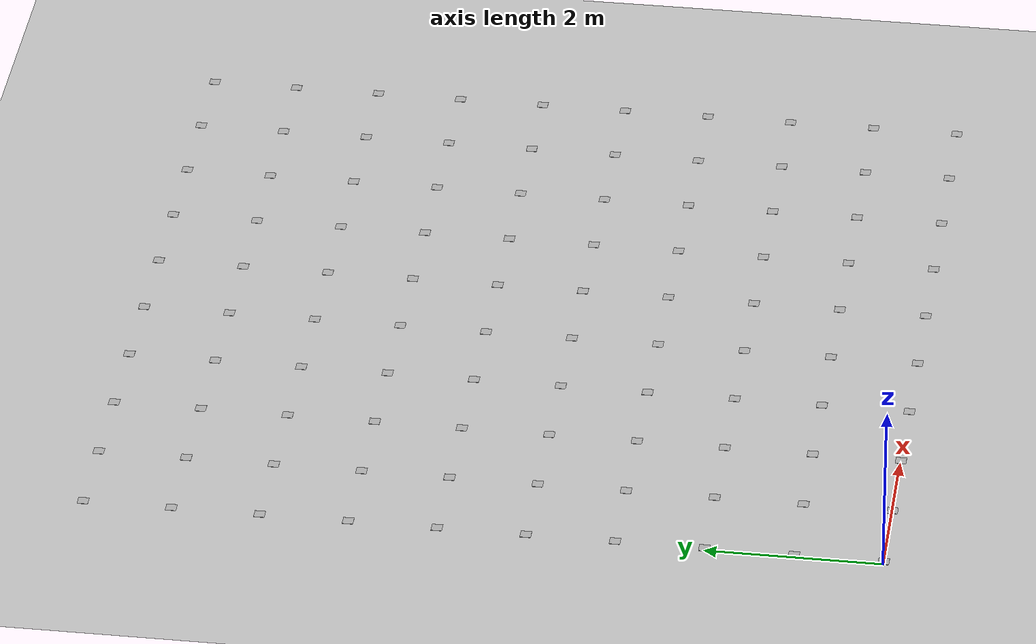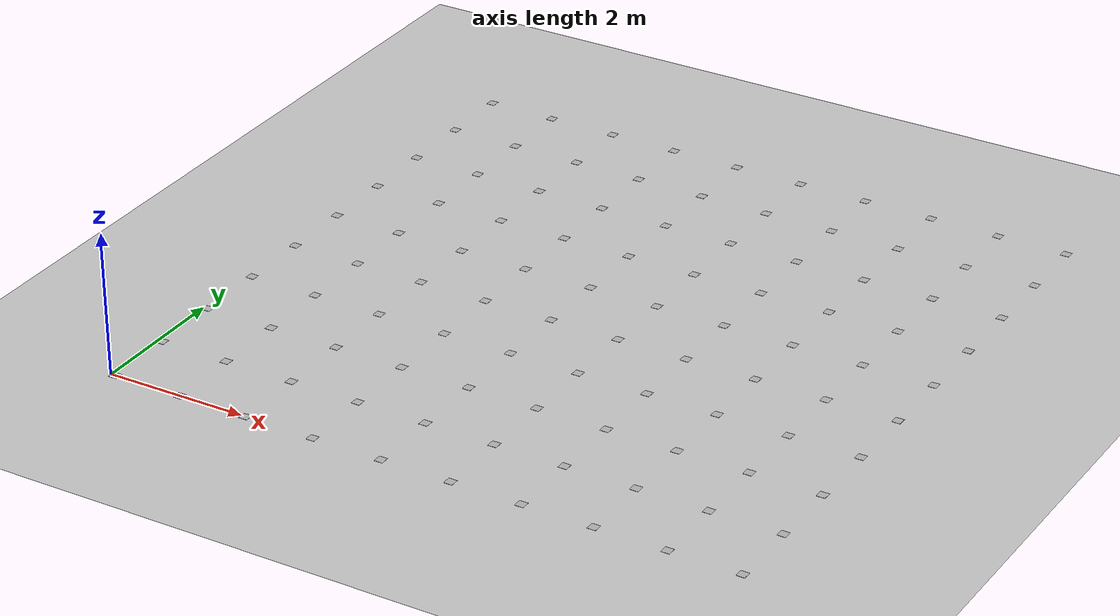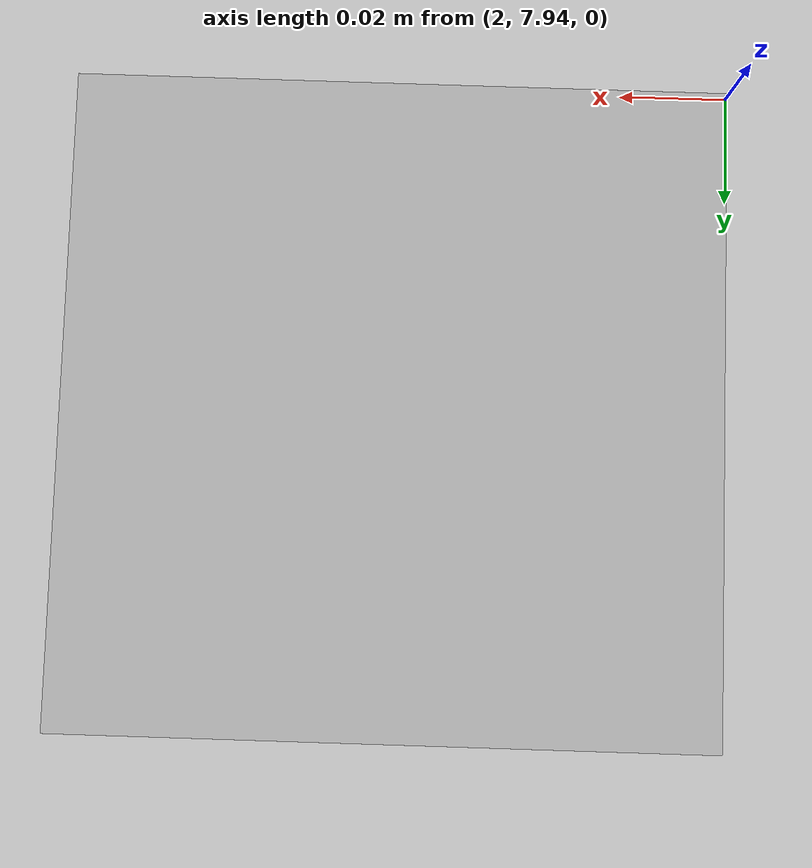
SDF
<sdf version="1.7">
 <world name="default">
  <light name="sun" type="directional">
   <pose>0 0 10 0 -0 0</pose>
   <diffuse>0.8 0.8 0.8 1</diffuse>
   <specular>0.2 0.2 0.2 1</specular>
   <attenuation>
    <range>1000</range>
    <constant>0.9</constant>
    <linear>0.01</linear>
    <quadratic>0.001</quadratic>
   </attenuation>
   <direction>-0.5 0.1 -0.9</direction>
   <spot><inner_angle>0</inner_angle><outer_angle>0</outer_angle><falloff>0</falloff></spot>
  </light>
  <model name="ground_plane">
   <static>1</static>
   <link name="link">
    <collision name="collision">
     <geometry><plane><normal>0 0 1</normal><size>100 100</size></plane></geometry>
     <surface>
      <contact><collide_bitmask>65535</collide_bitmask></contact>
      <friction><ode><mu>100</mu><mu2>50</mu2></ode></friction>
     </surface>
    </collision>
    <visual name="visual">
     <cast_shadows>0</cast_shadows>
     <geometry><plane><normal>0 0 1</normal><size>100 100</size></plane></geometry>
     <material>
      <script><uri>file://media/materials/scripts/gazebo.material</uri><name>Gazebo/Grey</name></script>
     </material>
    </visual>
   </link>
  </model>
  <gravity>0 0 -9.8</gravity>
  <magnetic_field>6e-06 2.3e-05 -4.2e-05</magnetic_field>
  <atmosphere type="adiabatic"/>
  <physics type="ode">
   <max_step_size>0.001</max_step_size>
   <real_time_factor>1</real_time_factor>
   <real_time_update_rate>1000</real_time_update_rate>
  </physics>
  <scene><ambient>0.4 0.4 0.4 1</ambient><background>0.7 0.7 0.7 1</background><shadows>1</shadows></scene>
  <spherical_coordinates>
   <surface_model>EARTH_WGS84</surface_model>
   <latitude_deg>0</latitude_deg>
   <longitude_deg>0</longitude_deg>
   <elevation>0</elevation>
   <heading_deg>0</heading_deg>
  </spherical_coordinates>
  <model name="marker1">
   <static>1</static>
   <link name="link">
    <visual name="visual">
     <geometry>
      <mesh><uri>model://marker1/meshes/marker1.dae</uri><scale>0.244 0.244 0.244</scale></mesh>
     </geometry>
    </visual>
   </link>
   <pose>0  0 0 1.5707 -1.5707 1.5707</pose>
  </model>
  <model name="marker2">
   <static>1</static>
   <link name="link">
    <visual name="visual">
     <geometry>
      <mesh><uri>model://marker2/meshes/marker2.dae</uri><scale>0.244 0.244 0.244</scale></mesh>
     </geometry>
    </visual>
   </link>
   <pose>0  1 0 1.5707 -1.5707 1.5707</pose>
  </model>
  <model name="marker3">
   <static>1</static>
   <link name="link">
    <visual name="visual">
     <geometry>
      <mesh><uri>model://marker3/meshes/marker3.dae</uri><scale>0.244 0.244 0.244</scale></mesh>
     </geometry>
    </visual>
   </link>
   <pose>0  2 0 1.5707 -1.5707 1.5707</pose>
  </model>
  <model name="marker4">
   <static>1</static>
   <link name="link">
    <visual name="visual">
     <geometry>
      <mesh><uri>model://marker4/meshes/marker4.dae</uri><scale>0.244 0.244 0.244</scale></mesh>
     </geometry>
    </visual>
   </link>
   <pose>0  3 0 1.5707 -1.5707 1.5707</pose>
  </model>
  <model name="marker5">
   <static>1</static>
   <link name="link">
    <visual name="visual">
     <geometry>
      <mesh><uri>model://marker5/meshes/marker5.dae</uri><scale>0.244 0.244 0.244</scale></mesh>
     </geometry>
    </visual>
   </link>
   <pose>0  4 0 1.5707 -1.5707 1.5707</pose>
  </model>
  <model name="marker6">
   <static>1</static>
   <link name="link">
    <visual name="visual">
     <geometry>
      <mesh><uri>model://marker6/meshes/marker6.dae</uri><scale>0.244 0.244 0.244</scale></mesh>
     </geometry>
    </visual>
   </link>
   <pose>0  5 0 1.5707 -1.5707 1.5707</pose>
  </model>
  <model name="marker7">
   <static>1</static>
   <link name="link">
    <visual name="visual">
     <geometry>
      <mesh><uri>model://marker7/meshes/marker7.dae</uri><scale>0.244 0.244 0.244</scale></mesh>
     </geometry>
    </visual>
   </link>
   <pose>0  6 0 1.5707 -1.5707 1.5707</pose>
  </model>
  <model name="marker8">
   <static>1</static>
   <link name="link">
    <visual name="visual">
     <geometry>
      <mesh><uri>model://marker8/meshes/marker8.dae</uri><scale>0.244 0.244 0.244</scale></mesh>
     </geometry>
    </visual>
   </link>
   <pose>0  7 0 1.5707 -1.5707 1.5707</pose>
  </model>
  <model name="marker9">
   <static>1</static>
   <link name="link">
    <visual name="visual">
     <geometry>
      <mesh><uri>model://marker9/meshes/marker9.dae</uri><scale>0.244 0.244 0.244</scale></mesh>
     </geometry>
    </visual>
   </link>
   <pose>0  8 0 1.5707 -1.5707 1.5707</pose>
  </model>
  <model name="marker10">
   <static>1</static>
   <link name="link">
    <visual name="visual">
     <geometry>
      <mesh><uri>model://marker10/meshes/marker10.dae</uri><scale>0.244 0.244 0.244</scale></mesh>
     </geometry>
    </visual>
   </link>
   <pose>0  9 0 1.5707 -1.5707 1.5707</pose>
  </model>
  <model name="marker11">
   <static>1</static>
   <link name="link">
    <visual name="visual">
     <geometry>
      <mesh><uri>model://marker11/meshes/marker11.dae</uri><scale>0.244 0.244 0.244</scale></mesh>
     </geometry>
    </visual>
   </link>
   <pose>1  0 0 1.5707 -1.5707 1.5707</pose>
  </model>
  <model name="marker12">
   <static>1</static>
   <link name="link">
    <visual name="visual">
     <geometry>
      <mesh><uri>model://marker12/meshes/marker12.dae</uri><scale>0.244 0.244 0.244</scale></mesh>
     </geometry>
    </visual>
   </link>
   <pose>1  1 0 1.5707 -1.5707 1.5707</pose>
  </model>
  <model name="marker13">
   <static>1</static>
   <link name="link">
    <visual name="visual">
     <geometry>
      <mesh><uri>model://marker13/meshes/marker13.dae</uri><scale>0.244 0.244 0.244</scale></mesh>
     </geometry>
    </visual>
   </link>
   <pose>1  2 0 1.5707 -1.5707 1.5707</pose>
  </model>
  <model name="marker14">
   <static>1</static>
   <link name="link">
    <visual name="visual">
     <geometry>
      <mesh><uri>model://marker14/meshes/marker14.dae</uri><scale>0.244 0.244 0.244</scale></mesh>
     </geometry>
    </visual>
   </link>
   <pose>1  3 0 1.5707 -1.5707 1.5707</pose>
  </model>
  <model name="marker15">
   <static>1</static>
   <link name="link">
    <visual name="visual">
     <geometry>
      <mesh><uri>model://marker15/meshes/marker15.dae</uri><scale>0.244 0.244 0.244</scale></mesh>
     </geometry>
    </visual>
   </link>
   <pose>1  4 0 1.5707 -1.5707 1.5707</pose>
  </model>
  <model name="marker16">
   <static>1</static>
   <link name="link">
    <visual name="visual">
     <geometry>
      <mesh><uri>model://marker16/meshes/marker16.dae</uri><scale>0.244 0.244 0.244</scale></mesh>
     </geometry>
    </visual>
   </link>
   <pose>1  5 0 1.5707 -1.5707 1.5707</pose>
  </model>
  <model name="marker17">
   <static>1</static>
   <link name="link">
    <visual name="visual">
     <geometry>
      <mesh><uri>model://marker17/meshes/marker17.dae</uri><scale>0.244 0.244 0.244</scale></mesh>
     </geometry>
    </visual>
   </link>
   <pose>1  6 0 1.5707 -1.5707 1.5707</pose>
  </model>
  <model name="marker18">
   <static>1</static>
   <link name="link">
    <visual name="visual">
     <geometry>
      <mesh><uri>model://marker18/meshes/marker18.dae</uri><scale>0.244 0.244 0.244</scale></mesh>
     </geometry>
    </visual>
   </link>
   <pose>1  7 0 1.5707 -1.5707 1.5707</pose>
  </model>
  <model name="marker19">
   <static>1</static>
   <link name="link">
    <visual name="visual">
     <geometry>
      <mesh><uri>model://marker19/meshes/marker19.dae</uri><scale>0.244 0.244 0.244</scale></mesh>
     </geometry>
    </visual>
   </link>
   <pose>1  8 0 1.5707 -1.5707 1.5707</pose>
  </model>
  <model name="marker20">
   <static>1</static>
   <link name="link">
    <visual name="visual">
     <geometry>
      <mesh><uri>model://marker20/meshes/marker20.dae</uri><scale>0.244 0.244 0.244</scale></mesh>
     </geometry>
    </visual>
   </link>
   <pose>1  9 0 1.5707 -1.5707 1.5707</pose>
  </model>
  <model name="marker21">
   <static>1</static>
   <link name="link">
    <visual name="visual">
     <geometry>
      <mesh><uri>model://marker21/meshes/marker21.dae</uri><scale>0.244 0.244 0.244</scale></mesh>
     </geometry>
    </visual>
   </link>
   <pose>2  0 0 1.5707 -1.5707 1.5707</pose>
  </model>
  <model name="marker22">
   <static>1</static>
   <link name="link">
    <visual name="visual">
     <geometry>
      <mesh><uri>model://marker22/meshes/marker22.dae</uri><scale>0.244 0.244 0.244</scale></mesh>
     </geometry>
    </visual>
   </link>
   <pose>2  1 0 1.5707 -1.5707 1.5707</pose>
  </model>
  <model name="marker23">
   <static>1</static>
   <link name="link">
    <visual name="visual">
     <geometry>
      <mesh><uri>model://marker23/meshes/marker23.dae</uri><scale>0.244 0.244 0.244</scale></mesh>
     </geometry>
    </visual>
   </link>
   <pose>2  2 0 1.5707 -1.5707 1.5707</pose>
  </model>
  <model name="marker24">
   <static>1</static>
   <link name="link">
    <visual name="visual">
     <geometry>
      <mesh><uri>model://marker24/meshes/marker24.dae</uri><scale>0.244 0.244 0.244</scale></mesh>
     </geometry>
    </visual>
   </link>
   <pose>2  3 0 1.5707 -1.5707 1.5707</pose>
  </model>
  <model name="marker25">
   <static>1</static>
   <link name="link">
    <visual name="visual">
     <geometry>
      <mesh><uri>model://marker25/meshes/marker25.dae</uri><scale>0.244 0.244 0.244</scale></mesh>
     </geometry>
    </visual>
   </link>
   <pose>2  4 0 1.5707 -1.5707 1.5707</pose>
  </model>
  <model name="marker26">
   <static>1</static>
   <link name="link">
    <visual name="visual">
     <geometry>
      <mesh><uri>model://marker26/meshes/marker26.dae</uri><scale>0.244 0.244 0.244</scale></mesh>
     </geometry>
    </visual>
   </link>
   <pose>2  5 0 1.5707 -1.5707 1.5707</pose>
  </model>
  <model name="marker27">
   <static>1</static>
   <link name="link">
    <visual name="visual">
     <geometry>
      <mesh><uri>model://marker27/meshes/marker27.dae</uri><scale>0.244 0.244 0.244</scale></mesh>
     </geometry>
    </visual>
   </link>
   <pose>2  6 0 1.5707 -1.5707 1.5707</pose>
  </model>
  <model name="marker28">
   <static>1</static>
   <link name="link">
    <visual name="visual">
     <geometry>
      <mesh><uri>model://marker28/meshes/marker28.dae</uri><scale>0.244 0.244 0.244</scale></mesh>
     </geometry>
    </visual>
   </link>
   <pose>2  7 0 1.5707 -1.5707 1.5707</pose>
  </model>
  <model name="marker29">
   <static>1</static>
   <link name="link">
    <visual name="visual">
     <geometry>
      <mesh><uri>model://marker29/meshes/marker29.dae</uri><scale>0.244 0.244 0.244</scale></mesh>
     </geometry>
    </visual>
   </link>
   <pose>2  8 0 1.5707 -1.5707 1.5707</pose>
  </model>
  <model name="marker30">
   <static>1</static>
   <link name="link">
    <visual name="visual">
     <geometry>
      <mesh><uri>model://marker30/meshes/marker30.dae</uri><scale>0.244 0.244 0.244</scale></mesh>
     </geometry>
    </visual>
   </link>
   <pose>2  9 0 1.5707 -1.5707 1.5707</pose>
  </model>
  <model name="marker31">
   <static>1</static>
   <link name="link">
    <visual name="visual">
     <geometry>
      <mesh><uri>model://marker31/meshes/marker31.dae</uri><scale>0.244 0.244 0.244</scale></mesh>
     </geometry>
    </visual>
   </link>
   <pose>3  0 0 1.5707 -1.5707 1.5707</pose>
  </model>
  <model name="marker32">
   <static>1</static>
   <link name="link">
    <visual name="visual">
     <geometry>
      <mesh><uri>model://marker32/meshes/marker32.dae</uri><scale>0.244 0.244 0.244</scale></mesh>
     </geometry>
    </visual>
   </link>
   <pose>3  1 0 1.5707 -1.5707 1.5707</pose>
  </model>
  <model name="marker33">
   <static>1</static>
   <link name="link">
    <visual name="visual">
     <geometry>
      <mesh><uri>model://marker33/meshes/marker33.dae</uri><scale>0.244 0.244 0.244</scale></mesh>
     </geometry>
    </visual>
   </link>
   <pose>3  2 0 1.5707 -1.5707 1.5707</pose>
  </model>
  <model name="marker34">
   <static>1</static>
   <link name="link">
    <visual name="visual">
     <geometry>
      <mesh><uri>model://marker34/meshes/marker34.dae</uri><scale>0.244 0.244 0.244</scale></mesh>
     </geometry>
    </visual>
   </link>
   <pose>3  3 0 1.5707 -1.5707 1.5707</pose>
  </model>
  <model name="marker35">
   <static>1</static>
   <link name="link">
    <visual name="visual">
     <geometry>
      <mesh><uri>model://marker35/meshes/marker35.dae</uri><scale>0.244 0.244 0.244</scale></mesh>
     </geometry>
    </visual>
   </link>
   <pose>3  4 0 1.5707 -1.5707 1.5707</pose>
  </model>
  <model name="marker36">
   <static>1</static>
   <link name="link">
    <visual name="visual">
     <geometry>
      <mesh><uri>model://marker36/meshes/marker36.dae</uri><scale>0.244 0.244 0.244</scale></mesh>
     </geometry>
    </visual>
   </link>
   <pose>3  5 0 1.5707 -1.5707 1.5707</pose>
  </model>
  <model name="marker37">
   <static>1</static>
   <link name="link">
    <visual name="visual">
     <geometry>
      <mesh><uri>model://marker37/meshes/marker37.dae</uri><scale>0.244 0.244 0.244</scale></mesh>
     </geometry>
    </visual>
   </link>
   <pose>3  6 0 1.5707 -1.5707 1.5707</pose>
  </model>
  <model name="marker38">
   <static>1</static>
   <link name="link">
    <visual name="visual">
     <geometry>
      <mesh><uri>model://marker38/meshes/marker38.dae</uri><scale>0.244 0.244 0.244</scale></mesh>
     </geometry>
    </visual>
   </link>
   <pose>3  7 0 1.5707 -1.5707 1.5707</pose>
  </model>
  <model name="marker39">
   <static>1</static>
   <link name="link">
    <visual name="visual">
     <geometry>
      <mesh><uri>model://marker39/meshes/marker39.dae</uri><scale>0.244 0.244 0.244</scale></mesh>
     </geometry>
    </visual>
   </link>
   <pose>3  8 0 1.5707 -1.5707 1.5707</pose>
  </model>
  <model name="marker40">
   <static>1</static>
   <link name="link">
    <visual name="visual">
     <geometry>
      <mesh><uri>model://marker40/meshes/marker40.dae</uri><scale>0.244 0.244 0.244</scale></mesh>
     </geometry>
    </visual>
   </link>
   <pose>3  9 0 1.5707 -1.5707 1.5707</pose>
  </model>
  <model name="marker41">
   <static>1</static>
   <link name="link">
    <visual name="visual">
     <geometry>
      <mesh><uri>model://marker41/meshes/marker41.dae</uri><scale>0.244 0.244 0.244</scale></mesh>
     </geometry>
    </visual>
   </link>
   <pose>4  0 0 1.5707 -1.5707 1.5707</pose>
  </model>
  <model name="marker42">
   <static>1</static>
   <link name="link">
    <visual name="visual">
     <geometry>
      <mesh><uri>model://marker42/meshes/marker42.dae</uri><scale>0.244 0.244 0.244</scale></mesh>
     </geometry>
    </visual>
   </link>
   <pose>4  1 0 1.5707 -1.5707 1.5707</pose>
  </model>
  <model name="marker43">
   <static>1</static>
   <link name="link">
    <visual name="visual">
     <geometry>
      <mesh><uri>model://marker43/meshes/marker43.dae</uri><scale>0.244 0.244 0.244</scale></mesh>
     </geometry>
    </visual>
   </link>
   <pose>4  2 0 1.5707 -1.5707 1.5707</pose>
  </model>
  <model name="marker44">
   <static>1</static>
   <link name="link">
    <visual name="visual">
     <geometry>
      <mesh><uri>model://marker44/meshes/marker44.dae</uri><scale>0.244 0.244 0.244</scale></mesh>
     </geometry>
    </visual>
   </link>
   <pose>4  3 0 1.5707 -1.5707 1.5707</pose>
  </model>
  <model name="marker45">
   <static>1</static>
   <link name="link">
    <visual name="visual">
     <geometry>
      <mesh><uri>model://marker45/meshes/marker45.dae</uri><scale>0.244 0.244 0.244</scale></mesh>
     </geometry>
    </visual>
   </link>
   <pose>4  4 0 1.5707 -1.5707 1.5707</pose>
  </model>
  <model name="marker46">
   <static>1</static>
   <link name="link">
    <visual name="visual">
     <geometry>
      <mesh><uri>model://marker46/meshes/marker46.dae</uri><scale>0.244 0.244 0.244</scale></mesh>
     </geometry>
    </visual>
   </link>
   <pose>4  5 0 1.5707 -1.5707 1.5707</pose>
  </model>
  <model name="marker47">
   <static>1</static>
   <link name="link">
    <visual name="visual">
     <geometry>
      <mesh><uri>model://marker47/meshes/marker47.dae</uri><scale>0.244 0.244 0.244</scale></mesh>
     </geometry>
    </visual>
   </link>
   <pose>4  6 0 1.5707 -1.5707 1.5707</pose>
  </model>
  <model name="marker48">
   <static>1</static>
   <link name="link">
    <visual name="visual">
     <geometry>
      <mesh><uri>model://marker48/meshes/marker48.dae</uri><scale>0.244 0.244 0.244</scale></mesh>
     </geometry>
    </visual>
   </link>
   <pose>4  7 0 1.5707 -1.5707 1.5707</pose>
  </model>
  <model name="marker49">
   <static>1</static>
   <link name="link">
    <visual name="visual">
     <geometry>
      <mesh><uri>model://marker49/meshes/marker49.dae</uri><scale>0.244 0.244 0.244</scale></mesh>
     </geometry>
    </visual>
   </link>
   <pose>4  8 0 1.5707 -1.5707 1.5707</pose>
  </model>
  <model name="marker50">
   <static>1</static>
   <link name="link">
    <visual name="visual">
     <geometry>
      <mesh><uri>model://marker50/meshes/marker50.dae</uri><scale>0.244 0.244 0.244</scale></mesh>
     </geometry>
    </visual>
   </link>
   <pose>4  9 0 1.5707 -1.5707 1.5707</pose>
  </model>
  <model name="marker51">
   <static>1</static>
   <link name="link">
    <visual name="visual">
     <geometry>
      <mesh><uri>model://marker51/meshes/marker51.dae</uri><scale>0.244 0.244 0.244</scale></mesh>
     </geometry>
    </visual>
   </link>
   <pose>5  0 0 1.5707 -1.5707 1.5707</pose>
  </model>
  <model name="marker52">
   <static>1</static>
   <link name="link">
    <visual name="visual">
     <geometry>
      <mesh><uri>model://marker52/meshes/marker52.dae</uri><scale>0.244 0.244 0.244</scale></mesh>
     </geometry>
    </visual>
   </link>
   <pose>5  1 0 1.5707 -1.5707 1.5707</pose>
  </model>
  <model name="marker53">
   <static>1</static>
   <link name="link">
    <visual name="visual">
     <geometry>
      <mesh><uri>model://marker53/meshes/marker53.dae</uri><scale>0.244 0.244 0.244</scale></mesh>
     </geometry>
    </visual>
   </link>
   <pose>5  2 0 1.5707 -1.5707 1.5707</pose>
  </model>
  <model name="marker54">
   <static>1</static>
   <link name="link">
    <visual name="visual">
     <geometry>
      <mesh><uri>model://marker54/meshes/marker54.dae</uri><scale>0.244 0.244 0.244</scale></mesh>
     </geometry>
    </visual>
   </link>
   <pose>5  3 0 1.5707 -1.5707 1.5707</pose>
  </model>
  <model name="marker55">
   <static>1</static>
   <link name="link">
    <visual name="visual">
     <geometry>
      <mesh><uri>model://marker55/meshes/marker55.dae</uri><scale>0.244 0.244 0.244</scale></mesh>
     </geometry>
    </visual>
   </link>
   <pose>5  4 0 1.5707 -1.5707 1.5707</pose>
  </model>
  <model name="marker56">
   <static>1</static>
   <link name="link">
    <visual name="visual">
     <geometry>
      <mesh><uri>model://marker56/meshes/marker56.dae</uri><scale>0.244 0.244 0.244</scale></mesh>
     </geometry>
    </visual>
   </link>
   <pose>5  5 0 1.5707 -1.5707 1.5707</pose>
  </model>
  <model name="marker57">
   <static>1</static>
   <link name="link">
    <visual name="visual">
     <geometry>
      <mesh><uri>model://marker57/meshes/marker57.dae</uri><scale>0.244 0.244 0.244</scale></mesh>
     </geometry>
    </visual>
   </link>
   <pose>5  6 0 1.5707 -1.5707 1.5707</pose>
  </model>
  <model name="marker58">
   <static>1</static>
   <link name="link">
    <visual name="visual">
     <geometry>
      <mesh><uri>model://marker58/meshes/marker58.dae</uri><scale>0.244 0.244 0.244</scale></mesh>
     </geometry>
    </visual>
   </link>
   <pose>5  7 0 1.5707 -1.5707 1.5707</pose>
  </model>
  <model name="marker59">
   <static>1</static>
   <link name="link">
    <visual name="visual">
     <geometry>
      <mesh><uri>model://marker59/meshes/marker59.dae</uri><scale>0.244 0.244 0.244</scale></mesh>
     </geometry>
    </visual>
   </link>
   <pose>5  8 0 1.5707 -1.5707 1.5707</pose>
  </model>
  <model name="marker60">
   <static>1</static>
   <link name="link">
    <visual name="visual">
     <geometry>
      <mesh><uri>model://marker60/meshes/marker60.dae</uri><scale>0.244 0.244 0.244</scale></mesh>
     </geometry>
    </visual>
   </link>
   <pose>5  9 0 1.5707 -1.5707 1.5707</pose>
  </model>
  <model name="marker61">
   <static>1</static>
   <link name="link">
    <visual name="visual">
     <geometry>
      <mesh><uri>model://marker61/meshes/marker61.dae</uri><scale>0.244 0.244 0.244</scale></mesh>
     </geometry>
    </visual>
   </link>
   <pose>6  0 0 1.5707 -1.5707 1.5707</pose>
  </model>
  <model name="marker62">
   <static>1</static>
   <link name="link">
    <visual name="visual">
     <geometry>
      <mesh><uri>model://marker62/meshes/marker62.dae</uri><scale>0.244 0.244 0.244</scale></mesh>
     </geometry>
    </visual>
   </link>
   <pose>6  1 0 1.5707 -1.5707 1.5707</pose>
  </model>
  <model name="marker63">
   <static>1</static>
   <link name="link">
    <visual name="visual">
     <geometry>
      <mesh><uri>model://marker63/meshes/marker63.dae</uri><scale>0.244 0.244 0.244</scale></mesh>
     </geometry>
    </visual>
   </link>
   <pose>6  2 0 1.5707 -1.5707 1.5707</pose>
  </model>
  <model name="marker64">
   <static>1</static>
   <link name="link">
    <visual name="visual">
     <geometry>
      <mesh><uri>model://marker64/meshes/marker64.dae</uri><scale>0.244 0.244 0.244</scale></mesh>
     </geometry>
    </visual>
   </link>
   <pose>6  3 0 1.5707 -1.5707 1.5707</pose>
  </model>
  <model name="marker65">
   <static>1</static>
   <link name="link">
    <visual name="visual">
     <geometry>
      <mesh><uri>model://marker65/meshes/marker65.dae</uri><scale>0.244 0.244 0.244</scale></mesh>
     </geometry>
    </visual>
   </link>
   <pose>6  4 0 1.5707 -1.5707 1.5707</pose>
  </model>
  <model name="marker66">
   <static>1</static>
   <link name="link">
    <visual name="visual">
     <geometry>
      <mesh><uri>model://marker66/meshes/marker66.dae</uri><scale>0.244 0.244 0.244</scale></mesh>
     </geometry>
    </visual>
   </link>
   <pose>6  5 0 1.5707 -1.5707 1.5707</pose>
  </model>
  <model name="marker67">
   <static>1</static>
   <link name="link">
    <visual name="visual">
     <geometry>
      <mesh><uri>model://marker67/meshes/marker67.dae</uri><scale>0.244 0.244 0.244</scale></mesh>
     </geometry>
    </visual>
   </link>
   <pose>6  6 0 1.5707 -1.5707 1.5707</pose>
  </model>
  <model name="marker68">
   <static>1</static>
   <link name="link">
    <visual name="visual">
     <geometry>
      <mesh><uri>model://marker68/meshes/marker68.dae</uri><scale>0.244 0.244 0.244</scale></mesh>
     </geometry>
    </visual>
   </link>
   <pose>6  7 0 1.5707 -1.5707 1.5707</pose>
  </model>
  <model name="marker69">
   <static>1</static>
   <link name="link">
    <visual name="visual">
     <geometry>
      <mesh><uri>model://marker69/meshes/marker69.dae</uri><scale>0.244 0.244 0.244</scale></mesh>
     </geometry>
    </visual>
   </link>
   <pose>6  8 0 1.5707 -1.5707 1.5707</pose>
  </model>
  <model name="marker70">
   <static>1</static>
   <link name="link">
    <visual name="visual">
     <geometry>
      <mesh><uri>model://marker70/meshes/marker70.dae</uri><scale>0.244 0.244 0.244</scale></mesh>
     </geometry>
    </visual>
   </link>
   <pose>6  9 0 1.5707 -1.5707 1.5707</pose>
  </model>
  <model name="marker71">
   <static>1</static>
   <link name="link">
    <visual name="visual">
     <geometry>
      <mesh><uri>model://marker71/meshes/marker71.dae</uri><scale>0.244 0.244 0.244</scale></mesh>
     </geometry>
    </visual>
   </link>
   <pose>7  0 0 1.5707 -1.5707 1.5707</pose>
  </model>
  <model name="marker72">
   <static>1</static>
   <link name="link">
    <visual name="visual">
     <geometry>
      <mesh><uri>model://marker72/meshes/marker72.dae</uri><scale>0.244 0.244 0.244</scale></mesh>
     </geometry>
    </visual>
   </link>
   <pose>7  1 0 1.5707 -1.5707 1.5707</pose>
  </model>
  <model name="marker73">
   <static>1</static>
   <link name="link">
    <visual name="visual">
     <geometry>
      <mesh><uri>model://marker73/meshes/marker73.dae</uri><scale>0.244 0.244 0.244</scale></mesh>
     </geometry>
    </visual>
   </link>
   <pose>7  2 0 1.5707 -1.5707 1.5707</pose>
  </model>
  <model name="marker74">
   <static>1</static>
   <link name="link">
    <visual name="visual">
     <geometry>
      <mesh><uri>model://marker74/meshes/marker74.dae</uri><scale>0.244 0.244 0.244</scale></mesh>
     </geometry>
    </visual>
   </link>
   <pose>7  3 0 1.5707 -1.5707 1.5707</pose>
  </model>
  <model name="marker75">
   <static>1</static>
   <link name="link">
    <visual name="visual">
     <geometry>
      <mesh><uri>model://marker75/meshes/marker75.dae</uri><scale>0.244 0.244 0.244</scale></mesh>
     </geometry>
    </visual>
   </link>
   <pose>7  4 0 1.5707 -1.5707 1.5707</pose>
  </model>
  <model name="marker76">
   <static>1</static>
   <link name="link">
    <visual name="visual">
     <geometry>
      <mesh><uri>model://marker76/meshes/marker76.dae</uri><scale>0.244 0.244 0.244</scale></mesh>
     </geometry>
    </visual>
   </link>
   <pose>7  5 0 1.5707 -1.5707 1.5707</pose>
  </model>
  <model name="marker77">
   <static>1</static>
   <link name="link">
    <visual name="visual">
     <geometry>
      <mesh><uri>model://marker77/meshes/marker77.dae</uri><scale>0.244 0.244 0.244</scale></mesh>
     </geometry>
    </visual>
   </link>
   <pose>7  6 0 1.5707 -1.5707 1.5707</pose>
  </model>
  <model name="marker78">
   <static>1</static>
   <link name="link">
    <visual name="visual">
     <geometry>
      <mesh><uri>model://marker78/meshes/marker78.dae</uri><scale>0.244 0.244 0.244</scale></mesh>
     </geometry>
    </visual>
   </link>
   <pose>7  7 0 1.5707 -1.5707 1.5707</pose>
  </model>
  <model name="marker79">
   <static>1</static>
   <link name="link">
    <visual name="visual">
     <geometry>
      <mesh><uri>model://marker79/meshes/marker79.dae</uri><scale>0.244 0.244 0.244</scale></mesh>
     </geometry>
    </visual>
   </link>
   <pose>7  8 0 1.5707 -1.5707 1.5707</pose>
  </model>
  <model name="marker80">
   <static>1</static>
   <link name="link">
    <visual name="visual">
     <geometry>
      <mesh><uri>model://marker80/meshes/marker80.dae</uri><scale>0.244 0.244 0.244</scale></mesh>
     </geometry>
    </visual>
   </link>
   <pose>7  9 0 1.5707 -1.5707 1.5707</pose>
  </model>
  <model name="marker81">
   <static>1</static>
   <link name="link">
    <visual name="visual">
     <geometry>
      <mesh><uri>model://marker81/meshes/marker81.dae</uri><scale>0.244 0.244 0.244</scale></mesh>
     </geometry>
    </visual>
   </link>
   <pose>8  0 0 1.5707 -1.5707 1.5707</pose>
  </model>
  <model name="marker82">
   <static>1</static>
   <link name="link">
    <visual name="visual">
     <geometry>
      <mesh><uri>model://marker82/meshes/marker82.dae</uri><scale>0.244 0.244 0.244</scale></mesh>
     </geometry>
    </visual>
   </link>
   <pose>8  1 0 1.5707 -1.5707 1.5707</pose>
  </model>
  <model name="marker83">
   <static>1</static>
   <link name="link">
    <visual name="visual">
     <geometry>
      <mesh><uri>model://marker83/meshes/marker83.dae</uri><scale>0.244 0.244 0.244</scale></mesh>
     </geometry>
    </visual>
   </link>
   <pose>8  2 0 1.5707 -1.5707 1.5707</pose>
  </model>
  <model name="marker84">
   <static>1</static>
   <link name="link">
    <visual name="visual">
     <geometry>
      <mesh><uri>model://marker84/meshes/marker84.dae</uri><scale>0.244 0.244 0.244</scale></mesh>
     </geometry>
    </visual>
   </link>
   <pose>8  3 0 1.5707 -1.5707 1.5707</pose>
  </model>
  <model name="marker85">
   <static>1</static>
   <link name="link">
    <visual name="visual">
     <geometry>
      <mesh><uri>model://marker85/meshes/marker85.dae</uri><scale>0.244 0.244 0.244</scale></mesh>
     </geometry>
    </visual>
   </link>
   <pose>8  4 0 1.5707 -1.5707 1.5707</pose>
  </model>
  <model name="marker86">
   <static>1</static>
   <link name="link">
    <visual name="visual">
     <geometry>
      <mesh><uri>model://marker86/meshes/marker86.dae</uri><scale>0.244 0.244 0.244</scale></mesh>
     </geometry>
    </visual>
   </link>
   <pose>8  5 0 1.5707 -1.5707 1.5707</pose>
  </model>
  <model name="marker87">
   <static>1</static>
   <link name="link">
    <visual name="visual">
     <geometry>
      <mesh><uri>model://marker87/meshes/marker87.dae</uri><scale>0.244 0.244 0.244</scale></mesh>
     </geometry>
    </visual>
   </link>
   <pose>8  6 0 1.5707 -1.5707 1.5707</pose>
  </model>
  <model name="marker88">
   <static>1</static>
   <link name="link">
    <visual name="visual">
     <geometry>
      <mesh><uri>model://marker88/meshes/marker88.dae</uri><scale>0.244 0.244 0.244</scale></mesh>
     </geometry>
    </visual>
   </link>
   <pose>8  7 0 1.5707 -1.5707 1.5707</pose>
  </model>
  <model name="marker89">
   <static>1</static>
   <link name="link">
    <visual name="visual">
     <geometry>
      <mesh><uri>model://marker89/meshes/marker89.dae</uri><scale>0.244 0.244 0.244</scale></mesh>
     </geometry>
    </visual>
   </link>
   <pose>8  8 0 1.5707 -1.5707 1.5707</pose>
  </model>
  <model name="marker90">
   <static>1</static>
   <link name="link">
    <visual name="visual">
     <geometry>
      <mesh><uri>model://marker90/meshes/marker90.dae</uri><scale>0.244 0.244 0.244</scale></mesh>
     </geometry>
    </visual>
   </link>
   <pose>8  9 0 1.5707 -1.5707 1.5707</pose>
  </model>
  <model name="marker91">
   <static>1</static>
   <link name="link">
    <visual name="visual">
     <geometry>
      <mesh><uri>model://marker91/meshes/marker91.dae</uri><scale>0.244 0.244 0.244</scale></mesh>
     </geometry>
    </visual>
   </link>
   <pose>9  0 0 1.5707 -1.5707 1.5707</pose>
  </model>
  <model name="marker92">
   <static>1</static>
   <link name="link">
    <visual name="visual">
     <geometry>
      <mesh><uri>model://marker92/meshes/marker92.dae</uri><scale>0.244 0.244 0.244</scale></mesh>
     </geometry>
    </visual>
   </link>
   <pose>9  1 0 1.5707 -1.5707 1.5707</pose>
  </model>
  <model name="marker93">
   <static>1</static>
   <link name="link">
    <visual name="visual">
     <geometry>
      <mesh><uri>model://marker93/meshes/marker93.dae</uri><scale>0.244 0.244 0.244</scale></mesh>
     </geometry>
    </visual>
   </link>
   <pose>9  2 0 1.5707 -1.5707 1.5707</pose>
  </model>
  <model name="marker94">
   <static>1</static>
   <link name="link">
    <visual name="visual">
     <geometry>
      <mesh><uri>model://marker94/meshes/marker94.dae</uri><scale>0.244 0.244 0.244</scale></mesh>
     </geometry>
    </visual>
   </link>
   <pose>9  3 0 1.5707 -1.5707 1.5707</pose>
  </model>
  <model name="marker95">
   <static>1</static>
   <link name="link">
    <visual name="visual">
     <geometry>
      <mesh><uri>model://marker95/meshes/marker95.dae</uri><scale>0.244 0.244 0.244</scale></mesh>
     </geometry>
    </visual>
   </link>
   <pose>9  4 0 1.5707 -1.5707 1.5707</pose>
  </model>
  <model name="marker96">
   <static>1</static>
   <link name="link">
    <visual name="visual">
     <geometry>
      <mesh><uri>model://marker96/meshes/marker96.dae</uri><scale>0.244 0.244 0.244</scale></mesh>
     </geometry>
    </visual>
   </link>
   <pose>9  5 0 1.5707 -1.5707 1.5707</pose>
  </model>
  <model name="marker97">
   <static>1</static>
   <link name="link">
    <visual name="visual">
     <geometry>
      <mesh><uri>model://marker97/meshes/marker97.dae</uri><scale>0.244 0.244 0.244</scale></mesh>
     </geometry>
    </visual>
   </link>
   <pose>9  6 0 1.5707 -1.5707 1.5707</pose>
  </model>
  <model name="marker98">
   <static>1</static>
   <link name="link">
    <visual name="visual">
     <geometry>
      <mesh><uri>model://marker98/meshes/marker98.dae</uri><scale>0.244 0.244 0.244</scale></mesh>
     </geometry>
    </visual>
   </link>
   <pose>9  7 0 1.5707 -1.5707 1.5707</pose>
  </model>
  <model name="marker99">
   <static>1</static>
   <link name="link">
    <visual name="visual">
     <geometry>
      <mesh><uri>model://marker99/meshes/marker99.dae</uri><scale>0.244 0.244 0.244</scale></mesh>
     </geometry>
    </visual>
   </link>
   <pose>9  8 0 1.5707 -1.5707 1.5707</pose>
  </model>
  <model name="marker100">
   <static>1</static>
   <link name="link">
    <visual name="visual">
     <geometry>
      <mesh><uri>model://marker100/meshes/marker100.dae</uri><scale>0.244 0.244 0.244</scale></mesh>
     </geometry>
    </visual>
   </link>
   <pose>9  9 0 1.5707 -1.5707 1.5707</pose>
  </model>
 </world>
</sdf>
